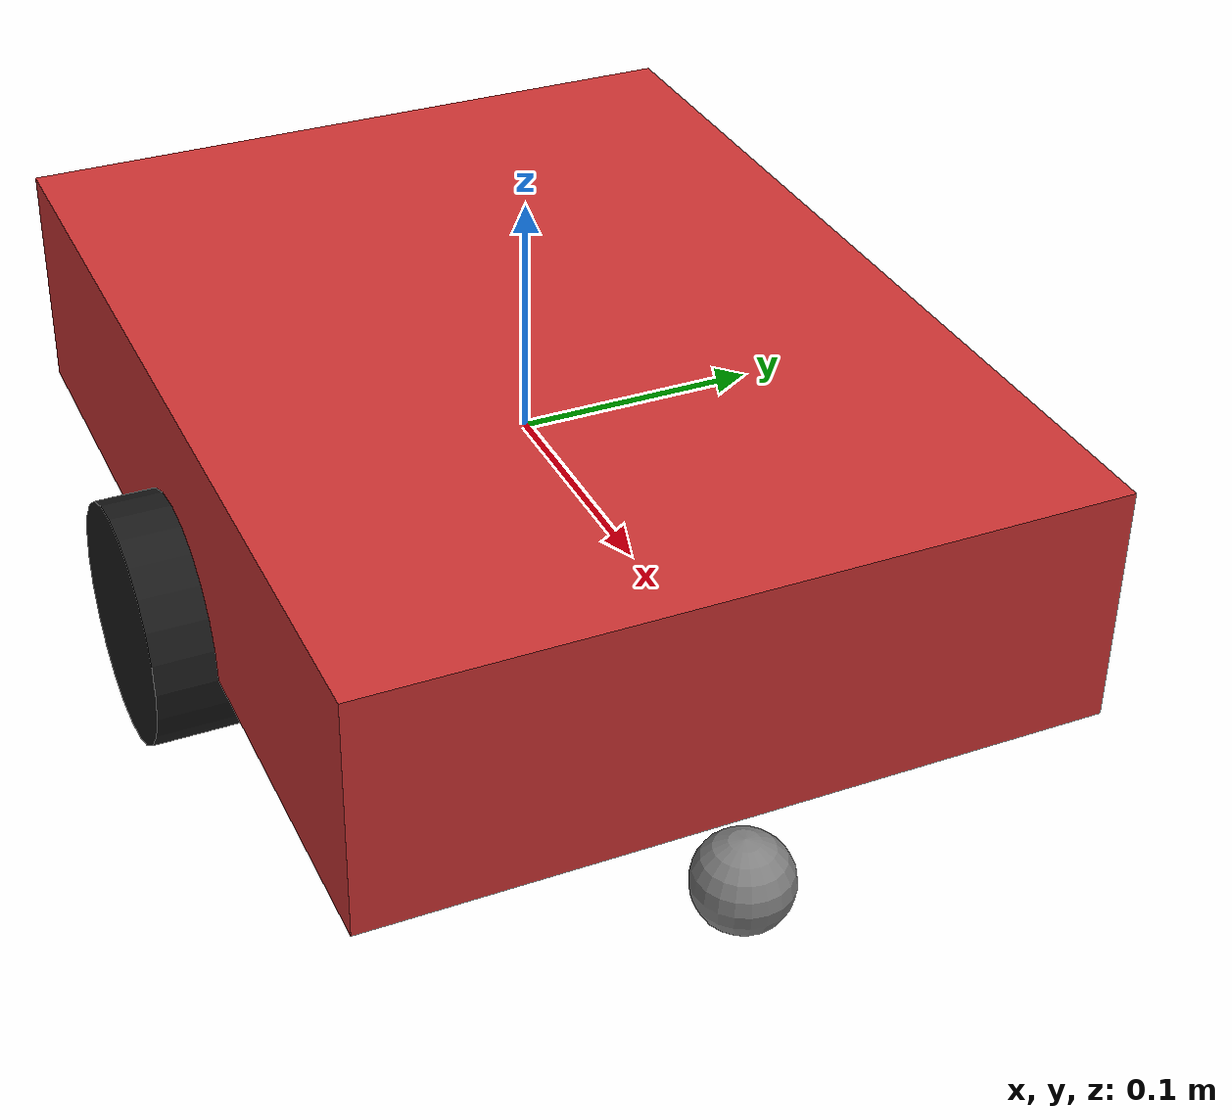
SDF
<?xml version="1.0" ?>
<sdf version="1.6">
  <model name="robot1">
    <!-- Base_link -->
    <link name="base_link">
      <pose>0 0 0 0 0 0</pose>
      <inertial>
        <mass>5.0</mass>
        <inertia>
          <ixx>0.05</ixx>
          <ixy>0.0</ixy>
          <ixz>0.0</ixz>
          <iyy>0.05</iyy>
          <iyz>0.0</iyz>
          <izz>0.1</izz>
        </inertia>
      </inertial>
      <collision name="base_link_collision">
        <geometry>
          <box>
            <size>0.4 0.3 0.1</size>
          </box>
        </geometry>
      </collision>
      <visual name="base_link_visual">
        <geometry>
          <box>
            <size>0.4 0.3 0.1</size>
          </box>
        </geometry>
        <material>
          <ambient>0.8 0.2 0.2 1</ambient>
          <diffuse>0.8 0.2 0.2 1</diffuse>
        </material>
      </visual>
    </link>

    <!-- Left Wheel -->
    <link name="left_wheel">
      <pose>0 0.15 -0.05 -1.5708 0 0</pose>
      <inertial>
        <mass>0.5</mass>
        <inertia>
          <ixx>0.00032</ixx>
          <iyy>0.00032</iyy>
          <izz>0.000625</izz>
        </inertia>
      </inertial>
      <collision name="left_wheel_collision">
        <geometry>
          <cylinder>
            <radius>0.05</radius>
            <length>0.05</length>
          </cylinder>
        </geometry>
        <surface>
          <ode>
            <mu>1.0</mu>
            <mu2>1.0</mu2>
          </ode>
        </surface>
      </collision>
      <visual name="left_wheel_visual">
        <geometry>
          <cylinder>
            <radius>0.05</radius>
            <length>0.05</length>
          </cylinder>
        </geometry>
        <material>
          <ambient>0.1 0.1 0.1 1</ambient>
          <diffuse>0.1 0.1 0.1 1</diffuse>
        </material>
      </visual>
    </link>

    <!-- Right Wheel -->
    <link name="right_wheel">
      <pose>0 -0.15 -0.05 -1.5708 0 0</pose>
      <inertial>
        <mass>0.5</mass>
        <inertia>
          <ixx>0.00032</ixx>
          <iyy>0.00032</iyy>
          <izz>0.000625</izz>
        </inertia>
      </inertial>
      <collision name="right_wheel_collision">
        <geometry>
          <cylinder>
            <radius>0.05</radius>
            <length>0.05</length>
          </cylinder>
        </geometry>
        <surface>
          <ode>
            <mu>1.0</mu>
            <mu2>1.0</mu2>
          </ode>
        </surface>
      </collision>
      <visual name="right_wheel_visual">
        <geometry>
          <cylinder>
            <radius>0.05</radius>
            <length>0.05</length>
          </cylinder>
        </geometry>
        <material>
          <ambient>0.1 0.1 0.1 1</ambient>
          <diffuse>0.1 0.1 0.1 1</diffuse>
        </material>
      </visual>
    </link>

    <!-- Front Caster -->
    <link name="front_caster">
      <pose>0.2 0 -0.08 0 0 0</pose>
      <inertial>
        <mass>0.1</mass>
        <inertia>
          <ixx>0.0001</ixx>
          <iyy>0.0001</iyy>
          <izz>0.0001</izz>
        </inertia>
      </inertial>
      <collision name="front_caster_collision">
        <geometry>
          <sphere>
            <radius>0.02</radius>
          </sphere>
        </geometry>
      </collision>
      <visual name="front_caster_visual">
        <geometry>
          <sphere>
            <radius>0.02</radius>
          </sphere>
        </geometry>
        <material>
          <ambient>0.5 0.5 0.5 1</ambient>
          <diffuse>0.5 0.5 0.5 1</diffuse>
        </material>
      </visual>
    </link>

    <!-- ==================== LiDAR (最终稳定版) ==================== -->
    <link name="laser_link">
      <pose>0 0 0.28 0 0 0</pose>
      <inertial>
        <mass>0.1</mass>
        <inertia>
          <ixx>0.001</ixx><iyy>0.001</iyy><izz>0.001</izz>
          <ixy>0</ixy><ixz>0</ixz><iyz>0</iyz>
        </inertia>
      </inertial>
        <!-- LiDAR Sensor -->
      <sensor name="lidar" type="ray">
        <always_on>true</always_on>
        <update_rate>5</update_rate>
        <visualize>true</visualize>
        <pose>0 0 0 0 0 0</pose>
        <ray>
          <scan>
            <horizontal>
              <samples>720</samples>
              <resolution>1</resolution>
              <min_angle>-3.14159</min_angle>
              <max_angle>3.14159</max_angle>
            </horizontal>
          </scan>
          <range>
            <min>0.15</min>
            <max>12.0</max>
            <resolution>0.01</resolution>
          </range>
        </ray>
        <!-- Plugin for the sensor -->
        <plugin name="lidar_plugin" filename="libgazebo_ros_ray_sensor.so">
          <ros>
            <namespace>/rb1</namespace>
            <remapping>~/out:=scan</remapping>
          </ros>
          <output_type>sensor_msgs/LaserScan</output_type>
          <frame_name>rb1/laser_link</frame_name>
        </plugin>
      </sensor>
    </link>

    <joint name="laser_joint" type="fixed">
      <parent>base_link</parent>
      <child>laser_link</child>
      <pose>0 0 0.28 0 0 0</pose>
    </joint>

    <!-- Rear Caster -->
    <link name="rear_caster">
      <pose>-0.2 0 -0.08 0 0 0</pose>
      <inertial>
        <mass>0.1</mass>
        <inertia>
          <ixx>0.0001</ixx>
          <iyy>0.0001</iyy>
          <izz>0.0001</izz>
        </inertia>
      </inertial>
      <collision name="rear_caster_collision">
        <geometry>
          <sphere>
            <radius>0.02</radius>
          </sphere>
        </geometry>
      </collision>
      <visual name="rear_caster_visual">
        <geometry>
          <sphere>
            <radius>0.02</radius>
          </sphere>
        </geometry>
        <material>
          <ambient>0.5 0.5 0.5 1</ambient>
          <diffuse>0.5 0.5 0.5 1</diffuse>
        </material>
      </visual>
    </link>

    <!-- IMU Link -->
    <link name="imu_link">
      <pose>0 0 0.1 0 0 0</pose>
      <inertial>
        <mass>0.01</mass>
        <inertia>
          <ixx>0.00001</ixx>
          <iyy>0.00001</iyy>
          <izz>0.00001</izz>
        </inertia>
      </inertial>
      <sensor name="imu_sensor" type="imu">
        <always_on>true</always_on>
        <update_rate>60</update_rate>
        <imu>
          <angular_velocity>
            <x><noise type="gaussian"><mean>0</mean><stddev>0.01</stddev></noise></x>
            <y><noise type="gaussian"><mean>0</mean><stddev>0.01</stddev></noise></y>
            <z><noise type="gaussian"><mean>0</mean><stddev>0.01</stddev></noise></z>
          </angular_velocity>
          <linear_acceleration>
            <x><noise type="gaussian"><mean>0</mean><stddev>0.05</stddev></noise></x>
            <y><noise type="gaussian"><mean>0</mean><stddev>0.05</stddev></noise></y>
            <z><noise type="gaussian"><mean>0</mean><stddev>0.05</stddev></noise></z>
          </linear_acceleration>
        </imu>
        <plugin name="imu_plugin" filename="libgazebo_ros_imu_sensor.so">
          <ros>
            <namespace>/rb1</namespace>
            <remapping>imu/data:=imu/data</remapping>
          </ros>
          <imu_name>imu_sensor</imu_name>
          <frame_name>rb1/imu_link</frame_name>
          <gaussian_noise>0.01</gaussian_noise>
        </plugin>
      </sensor>
    </link>

    <!-- Joints -->
    <joint name="left_wheel_joint" type="revolute">
      <parent>base_link</parent>
      <child>left_wheel</child>
      <axis>
        <xyz>0 0 1</xyz>
        <limit>
          <lower>-1e16</lower>
          <upper>1e16</upper>
        </limit>
      </axis>
    </joint>
    <joint name="right_wheel_joint" type="revolute">
      <parent>base_link</parent>
      <child>right_wheel</child>
      <axis>
        <xyz>0 0 1</xyz>
        <limit>
          <lower>-1e16</lower>
          <upper>1e16</upper>
        </limit>
      </axis>
    </joint>
    <joint name="front_caster_joint" type="ball">
      <parent>base_link</parent>
      <child>front_caster</child>
    </joint>
    <joint name="rear_caster_joint" type="ball">
      <parent>base_link</parent>
      <child>rear_caster</child>
    </joint>
    <joint name="imu_joint" type="fixed">
      <parent>base_link</parent>
      <child>imu_link</child>
      <pose>0 0 0 0 0 0</pose>
    </joint>

    <!-- Plugins -->
    <plugin name="diff_drive" filename="libgazebo_ros_diff_drive.so">
      <ros>
        <namespace>/rb1</namespace>
        <remapping>cmd_vel:=cmd_vel</remapping>
        <remapping>odom:=odom</remapping>
      </ros>
      <update_rate>10</update_rate>
      <odometry_noise>
        <linear_velocity>
          <mean>0.0</mean>
          <stddev>0.05</stddev> <!-- 线速度噪声，标准差 0.05 m/s -->
        </linear_velocity>
        <angular_velocity>
          <mean>0.0</mean>
          <stddev>0.03</stddev> <!-- 角速度噪声，标准差 0.03 rad/s -->
        </angular_velocity>
      </odometry_noise>
      <left_joint>left_wheel_joint</left_joint>
      <right_joint>right_wheel_joint</right_joint>
      <wheel_separation>0.3</wheel_separation>
      <wheel_diameter>0.1</wheel_diameter>
      <max_wheel_torque>10.0</max_wheel_torque>
      <max_wheel_acceleration>5.0</max_wheel_acceleration>
      <publish_odom>true</publish_odom>
      <publish_odom_tf>true</publish_odom_tf>
      <odometry_frame>rb1/odom</odometry_frame>
      <robot_base_frame>rb1/base_link</robot_base_frame>
    </plugin>
  </model>
</sdf>
